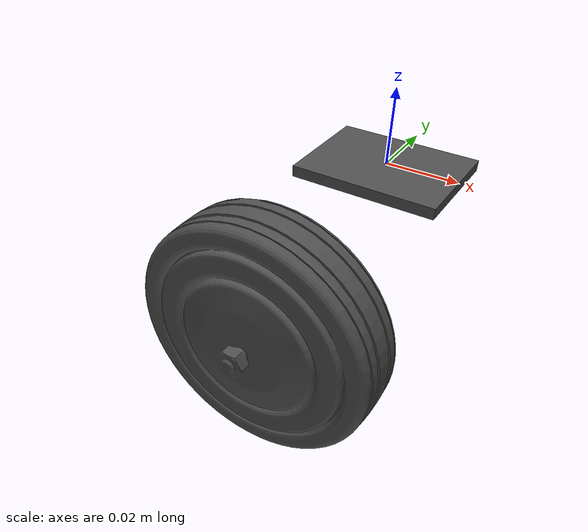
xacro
<?xml version="1.0"?>
<robot name="caster" xmlns:xacro="http://www.ros.org/wiki/xacro" >

  <xacro:include filename="$(find franka_description)/robots/caster_wheel.xacro" />

  <link name="world" />

  <xacro:caster_wheel name="caster" mass="0.3" radius="0.05" length="0.02" parent="world" caster_joint_z="-0.08" caster_steering_offset="-0.04">
    <origin xyz="0 0 0" rpy="0 0 0"/>
  </xacro:caster_wheel>

</robot>

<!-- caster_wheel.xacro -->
<robot xmlns:xacro="http://www.ros.org/wiki/xacro" >

  <xacro:include filename="$(find franka_description)/robots/inertia.xacro" />

  <xacro:macro name="caster_wheel" params="name mass parent length:='0.025' radius:='0.05' caster_joint_z:='-0.074' caster_steering_offset:='-0.035' *origin">

    <xacro:property name="base_width" value="0.04" />
    <xacro:property name="base_height" value="0.03" />
    <xacro:property name="base_depth" value="0.003" />

    <link name="${name}_fixed_link" >
      <xacro:macro name="caster_base_geometry" params="xyz:='0 0 0'">
        <origin xyz="0 0 ${-base_depth/2}" />
        <geometry>
          <box size="${base_width} ${base_height} ${base_depth}" />
        </geometry>
        <material name="darkgrey">
          <color rgba="0.3 0.3 0.3 1.0"/>
        </material>
      </xacro:macro>

      <visual>
        <xacro:caster_base_geometry/>
      </visual>

      <xacro:inertia-box mass="${mass}" width="${base_width}" height="${base_height}" depth="${base_depth}" />
    </link>

    <joint name="${name}_steering_joint" type="continuous">
      <xacro:insert_block name="origin" />
      <parent link="${parent}" />
      <child  link="${name}_fixed_link" />
      <axis   xyz="0 0 1" />
      <limit  effort="500" velocity="20" />
      <dynamics damping="0.003" friction="0.0"/>
    </joint>

    <link name="${name}_link" >
      <xacro:macro name="caster_wheel_geometry">
        <origin rpy="${pi/2} 0 ${pi/2}" />
        <geometry>
           <mesh filename="package://franka_description/meshes/visual/caster.stl"/>
        </geometry>
        <material name="darkgrey">
          <color rgba="0.3 0.3 0.3 1.0"/>
        </material>
      </xacro:macro>

      <visual>
        <xacro:caster_wheel_geometry/>
      </visual>
      <collision>
        <xacro:caster_wheel_geometry/>
      </collision>

      <xacro:inertia-cylinder mass="${mass}" radius="${radius}" h="${length}" />

    </link>

    <joint name="${name}_joint" type="continuous">
      <origin xyz ="${caster_steering_offset} 0 ${caster_joint_z}" rpy="0 0 0" />
      <parent link="${name}_fixed_link" />
      <child  link="${name}_link" />
      <axis   xyz="0 1 0" />
      <limit  effort="500" velocity="20" />
      <dynamics damping="0.003" friction="0.0"/>
    </joint>

  </xacro:macro>

</robot>

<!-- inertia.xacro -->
<robot xmlns:xacro="http://www.ros.org/wiki/xacro">

  <!-- ||         Inertia Utilities           || -->

  <!-- According to https://en.wikipedia.org/wiki/List_of_moments_of_inertia#List_of_3D_inertia_tensors -->
  <xacro:macro name="inertia-cylinder" params="mass radius h">
    <inertial>
      <mass value="${mass}" />
      <inertia ixx="${1./12 * mass * (3 * radius**2 + h**2)}" ixy = "0" ixz = "0"
               iyy="${1./12 * mass * (3 * radius**2 + h**2)}" iyz = "0"
               izz="${1./2  * mass * radius**2}" />
    </inertial>
  </xacro:macro>

  <!-- According to https://en.wikipedia.org/wiki/List_of_moments_of_inertia#List_of_3D_inertia_tensors -->
  <xacro:macro name="inertia-sphere" params="mass radius">
    <inertial>
      <mass value="${mass}" />
      <inertia ixx="${2./5 * mass * radius**2}" ixy="0" ixz="0"
               iyy="${2./5 * mass * radius**2}" iyz="0"
               izz="${2./5 * mass * radius**2}" />
    </inertial>
  </xacro:macro>

  <!-- According to https://en.wikipedia.org/wiki/List_of_moments_of_inertia#List_of_3D_inertia_tensors -->
  <xacro:macro name="inertia-box" params="mass width height depth">
    <inertial>
      <mass value="${mass}" />
      <inertia ixx="${1./12 * mass * (height**2 + depth**2)}" ixy="0" ixz="0"
               iyy="${1./12 * mass * (width**2  + depth**2)}" iyz="0"
               izz="${1./12 * mass * (width**2  + height**2)}" />
    </inertial>
  </xacro:macro>

  <xacro:macro name="inertia-default" params="mass">
    <inertial>
      <mass value="${mass}" />
      <inertia ixx="0.1" iyy="0.1" izz="0.1"
               ixy="0"   ixz="0"   iyz="0" />
    </inertial>
  </xacro:macro>

</robot>
